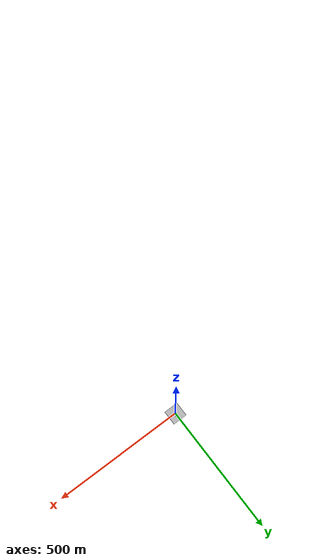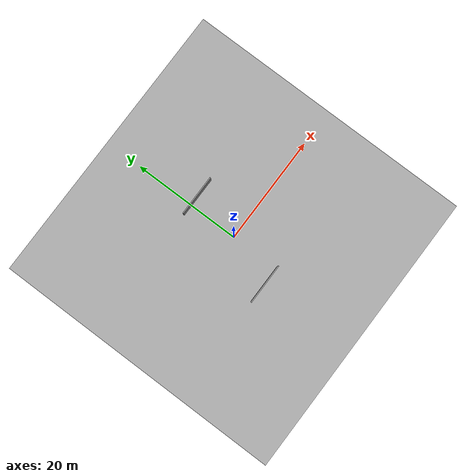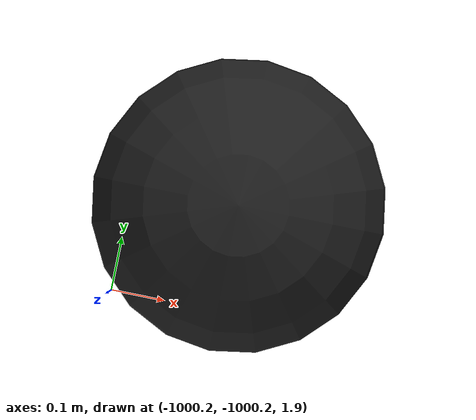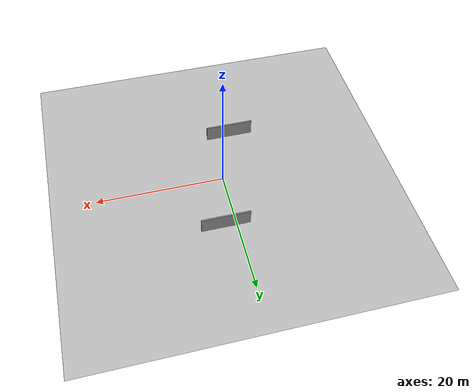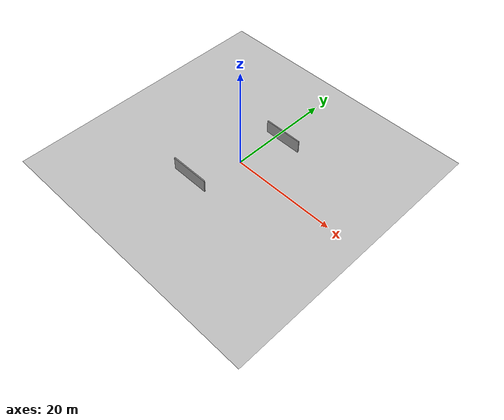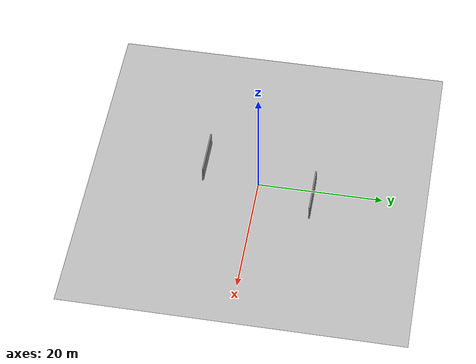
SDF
<sdf version="1.7">
 <world name="default">
  <plugin name="mrs_gazebo_static_transform_republisher_plugin" filename="libMrsGazeboCommonResources_StaticTransformRepublisher.so"/>
  <spherical_coordinates>
   <surface_model>EARTH_WGS84</surface_model>
   <latitude_deg>47.3977</latitude_deg>
   <longitude_deg>8.54559</longitude_deg>
   <elevation>0</elevation>
   <heading_deg>0</heading_deg>
  </spherical_coordinates>
  <physics name="default_physics" default="0" type="ode">
   <ode>
    <solver>
     <type>quick</type>
     <iters>10</iters>
     <sor>1.3</sor>
     <use_dynamic_moi_rescaling>0</use_dynamic_moi_rescaling>
    </solver>
    <constraints>
     <cfm>0</cfm>
     <erp>0.2</erp>
     <contact_max_correcting_vel>1000</contact_max_correcting_vel>
     <contact_surface_layer>0.001</contact_surface_layer>
    </constraints>
   </ode>
   <max_step_size>0.004</max_step_size>
   <real_time_factor>1</real_time_factor>
   <real_time_update_rate>250</real_time_update_rate>
  </physics>
  <scene><shadows>0</shadows><ambient>0.4 0.4 0.4 1</ambient><background>0.7 0.7 0.7 1</background></scene>
  <light name="sun" type="directional">
   <pose>0 0 1000 0.4 0.2 0</pose>
   <diffuse>1 1 1 1</diffuse>
   <specular>0.6 0.6 0.6 1</specular>
   <direction>0.1 0.1 -0.9</direction>
   <attenuation>
    <range>20</range>
    <constant>0.5</constant>
    <linear>0.01</linear>
    <quadratic>0.001</quadratic>
   </attenuation>
   <spot><inner_angle>0</inner_angle><outer_angle>0</outer_angle><falloff>0</falloff></spot>
  </light>
  <model name="ground_plane">
   <static>1</static>
   <link name="link">
    <collision name="collision">
     <geometry><plane><normal>0 0 1</normal><size>250 250</size></plane></geometry>
     <surface><contact><ode><min_depth>0.01</min_depth><max_vel>0</max_vel></ode></contact></surface>
    </collision>
    <visual name="grass">
     <cast_shadows>0</cast_shadows>
     <geometry><mesh><uri>file://grass_plane/meshes/grass_plane.dae</uri></mesh></geometry>
    </visual>
   </link>
  </model>
  <model name="the_void">
   <static>1</static>
   <link name="link">
    <pose>0 0 0.1 0 -0 0</pose>
    <visual name="the_void">
     <pose>0 0 2 0 -0 0</pose>
     <geometry><sphere><radius>0.25</radius></sphere></geometry>
     <material>
      <script><uri>file://media/materials/scripts/Gazebo.material</uri><name>Gazebo/Black</name></script>
     </material>
    </visual>
   </link>
   <pose>-1000 -1000 0 0 -0 0</pose>
  </model>
  <plugin name="mrs_gazebo_rviz_cam_synchronizer" filename="libMrsGazeboCommonResources_RvizCameraSynchronizer.so">
   <target_frame_id>gazebo_user_camera</target_frame_id>
   <world_origin_frame_id>uav1/gps_origin</world_origin_frame_id>
   <frame_to_follow>uav1</frame_to_follow>
  </plugin>
  <gravity>0 0 -9.8066</gravity>
  <magnetic_field>6e-06 2.3e-05 -4.2e-05</magnetic_field>
  <atmosphere type="adiabatic"/>
  <model name="grey_wall_0">
   <static>1</static>
   <link name="link">
    <pose>0 0 1.4 0 -0 0</pose>
    <collision name="collision"><geometry><box><size>7.5 0.2 2.8</size></box></geometry></collision>
    <visual name="visual">
     <cast_shadows>0</cast_shadows>
     <geometry><box><size>7.5 0.2 2.8</size></box></geometry>
     <material>
      <script>
       <uri>model://grey_wall/materials/scripts</uri>
       <uri>model://grey_wall/materials/textures</uri>
       <name>vrc/grey_wall</name>
      </script>
     </material>
    </visual>
   </link>
   <pose>-3.24691 -8.8987 -0.15 0 -0 0</pose>
  </model>
  <model name="grey_wall_1">
   <static>1</static>
   <link name="link">
    <pose>0 0 1.4 0 -0 0</pose>
    <collision name="collision"><geometry><box><size>7.5 0.2 2.8</size></box></geometry></collision>
    <visual name="visual">
     <cast_shadows>0</cast_shadows>
     <geometry><box><size>7.5 0.2 2.8</size></box></geometry>
     <material>
      <script>
       <uri>model://grey_wall/materials/scripts</uri>
       <uri>model://grey_wall/materials/textures</uri>
       <name>vrc/grey_wall</name>
      </script>
     </material>
    </visual>
   </link>
   <pose>1.67579 8.97633 -0.15 0 -0 0</pose>
  </model>
 </world>
</sdf>
